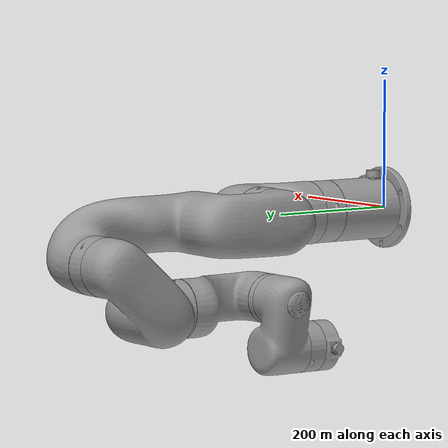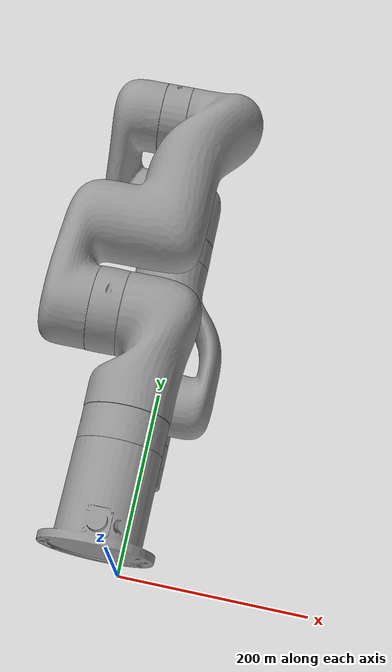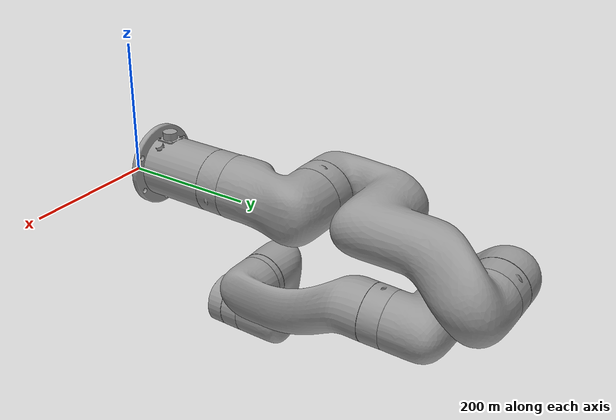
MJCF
<mujoco model="xarm5">
  <compiler angle="radian" autolimits="true" meshdir="assets"/>

  <default>
    <default class="visual">
      <geom group="2" type="mesh" contype="0" conaffinity="0"/>
    </default>
    <default class="collision">
      <geom group="3" type="mesh"/>
    </default>
  </default>
  <asset>
    <material name="material78" specular="0.5" shininess="0.5" rgba="0.6038273388475408 0.6038273388475408 0.6038273388475408 1.0"/>
    <material name="material79" specular="0.5" shininess="0.5" rgba="0.6038273388475408 0.6038273388475408 0.6038273388475408 1.0"/>
    <material name="material80" specular="0.5" shininess="0.5" rgba="0.6038273388475408 0.6038273388475408 0.6038273388475408 1.0"/>
    <material name="material81" specular="0.5" shininess="0.5" rgba="0.6038273388475408 0.6038273388475408 0.6038273388475408 1.0"/>
    <material name="material82" specular="0.5" shininess="0.5" rgba="0.6038273388475408 0.6038273388475408 0.6038273388475408 1.0"/>
    <material name="material83" specular="0.5" shininess="0.5" rgba="0.6038273388475408 0.6038273388475408 0.6038273388475408 1.0"/>
    <material name="material84" specular="0.5" shininess="0.5" rgba="0.6038273388475408 0.6038273388475408 0.6038273388475408 1.0"/>
    <material name="material85" specular="0.5" shininess="0.5" rgba="0.6038273388475408 0.6038273388475408 0.6038273388475408 1.0"/>
    <material name="material86" specular="0.5" shininess="0.5" rgba="0.6038273388475408 0.6038273388475408 0.6038273388475408 1.0"/>
    <material name="material87" specular="0.5" shininess="0.5" rgba="0.6038273388475408 0.6038273388475408 0.6038273388475408 1.0"/>
    <material name="material88" specular="0.5" shininess="0.5" rgba="0.6038273388475408 0.6038273388475408 0.6038273388475408 1.0"/>
    <material name="material89" specular="0.5" shininess="0.5" rgba="0.6038273388475408 0.6038273388475408 0.6038273388475408 1.0"/>
    <material name="material90" specular="0.5" shininess="0.5" rgba="0.6038273388475408 0.6038273388475408 0.6038273388475408 1.0"/>
    <material name="material91" specular="0.5" shininess="0.5" rgba="0.6038273388475408 0.6038273388475408 0.6038273388475408 1.0"/>
    <mesh file="xArm5(XF1305)_0.obj"/>
    <mesh file="xArm5(XF1305)_1.obj"/>
    <mesh file="xArm5(XF1305)_2.obj"/>
    <mesh file="xArm5(XF1305)_3.obj"/>
    <mesh file="xArm5(XF1305)_4.obj"/>
    <mesh file="xArm5(XF1305)_5.obj"/>
    <mesh file="xArm5(XF1305)_6.obj"/>
    <mesh file="xArm5(XF1305)_7.obj"/>
    <mesh file="xArm5(XF1305)_8.obj"/>
    <mesh file="xArm5(XF1305)_9.obj"/>
    <mesh file="xArm5(XF1305)_10.obj"/>
    <mesh file="xArm5(XF1305)_11.obj"/>
    <mesh file="xArm5(XF1305)_12.obj"/>
    <mesh file="xArm5(XF1305)_13.obj"/>
  </asset>
  <worldbody>
    <body name="xArm5(XF1305)">
      <geom mesh="xArm5(XF1305)_0" material="material91" class="visual"/>
      <geom mesh="xArm5(XF1305)_1" material="material90" class="visual"/>
      <geom mesh="xArm5(XF1305)_2" material="material89" class="visual"/>
      <geom mesh="xArm5(XF1305)_3" material="material88" class="visual"/>
      <geom mesh="xArm5(XF1305)_4" material="material87" class="visual"/>
      <geom mesh="xArm5(XF1305)_5" material="material86" class="visual"/>
      <geom mesh="xArm5(XF1305)_6" material="material85" class="visual"/>
      <geom mesh="xArm5(XF1305)_7" material="material84" class="visual"/>
      <geom mesh="xArm5(XF1305)_8" material="material83" class="visual"/>
      <geom mesh="xArm5(XF1305)_9" material="material82" class="visual"/>
      <geom mesh="xArm5(XF1305)_10" material="material81" class="visual"/>
      <geom mesh="xArm5(XF1305)_11" material="material80" class="visual"/>
      <geom mesh="xArm5(XF1305)_12" material="material79" class="visual"/>
      <geom mesh="xArm5(XF1305)_13" material="material78" class="visual"/>
      <geom mesh="xArm5(XF1305)_0" class="collision"/>
      <geom mesh="xArm5(XF1305)_1" class="collision"/>
      <geom mesh="xArm5(XF1305)_2" class="collision"/>
      <geom mesh="xArm5(XF1305)_3" class="collision"/>
      <geom mesh="xArm5(XF1305)_4" class="collision"/>
      <geom mesh="xArm5(XF1305)_5" class="collision"/>
      <geom mesh="xArm5(XF1305)_6" class="collision"/>
      <geom mesh="xArm5(XF1305)_7" class="collision"/>
      <geom mesh="xArm5(XF1305)_8" class="collision"/>
      <geom mesh="xArm5(XF1305)_9" class="collision"/>
      <geom mesh="xArm5(XF1305)_10" class="collision"/>
      <geom mesh="xArm5(XF1305)_11" class="collision"/>
      <geom mesh="xArm5(XF1305)_12" class="collision"/>
      <geom mesh="xArm5(XF1305)_13" class="collision"/>
    </body>
  </worldbody>
</mujoco>
